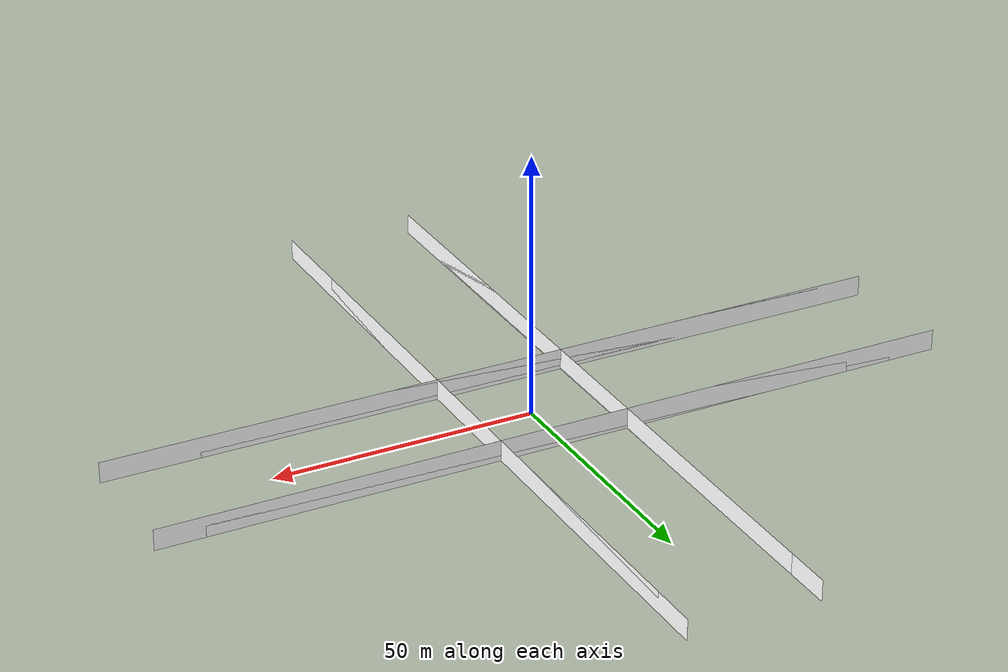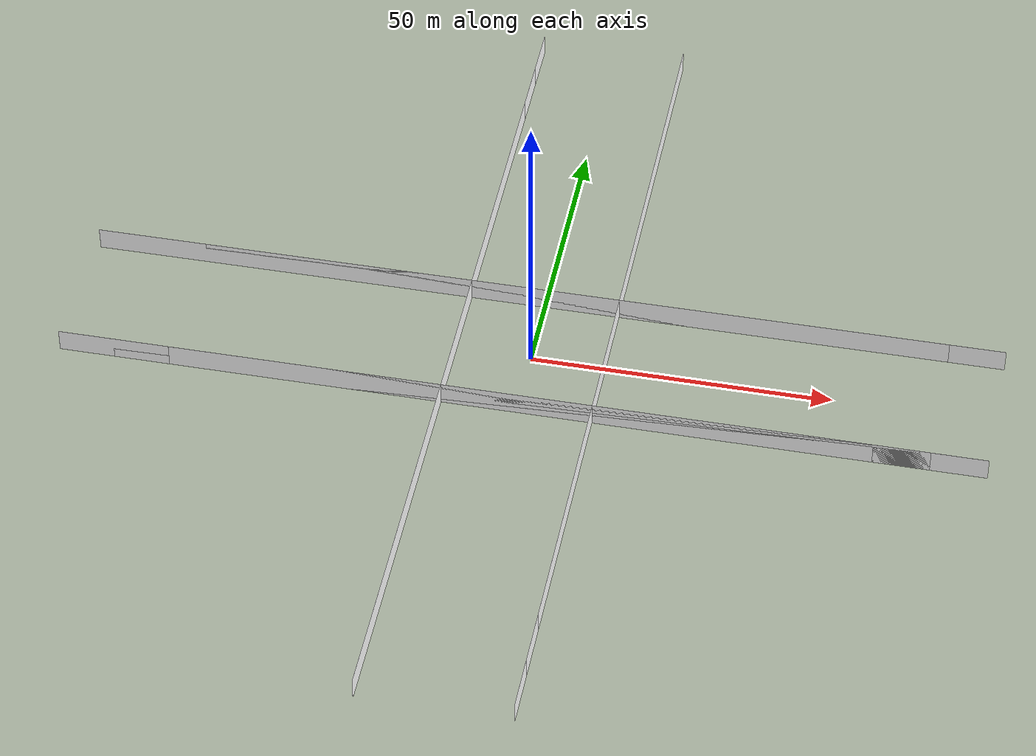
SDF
<sdf version="1.8">
 <world name="large_demo">
  <plugin name="ignition::gazebo::systems::Physics" filename="ignition-gazebo-physics-system"/>
  <plugin name="ignition::gazebo::systems::UserCommands" filename="ignition-gazebo-user-commands-system"/>
  <plugin name="ignition::gazebo::systems::SceneBroadcaster" filename="ignition-gazebo-scene-broadcaster-system"/>
  <plugin name="ignition::gazebo::systems::Contact" filename="ignition-gazebo-contact-system"/>
  <plugin filename="ignition-gazebo-sensors-system.so" name="ignition::gazebo::systems::Sensors"/>
  <light name="sun" type="directional">
   <cast_shadows>0</cast_shadows>
   <pose>0 0 100 0 -0 0</pose>
   <diffuse>0.8 0.8 0.8 1</diffuse>
   <specular>0.8 0.8 0.8 1</specular>
   <direction>-0.5 0.1 -0.9</direction>
   <intensity>5</intensity>
  </light>
  <gravity>0 0 -9.81</gravity>
  <magnetic_field>6e-06 2.3e-05 -4.2e-05</magnetic_field>
  <atmosphere type="adiabatic"/>
  <physics name="default_physics" type="ignored">
   <max_step_size>0.01</max_step_size>
   <real_time_factor>1</real_time_factor>
   <real_time_update_rate>100</real_time_update_rate>
  </physics>
  <scene>
   <ambient>1.0 1.0 1.0 1</ambient>
   <background>0.6 0.8 1.0 1</background>
   <shadows>0</shadows>
   <grid>0</grid>
  </scene>
  <spherical_coordinates>
   <latitude_deg>0.0</latitude_deg>
   <longitude_deg>0.0</longitude_deg>
   <elevation>10.0</elevation>
   <heading_deg>0</heading_deg>
   <surface_model>EARTH_WGS84</surface_model>
  </spherical_coordinates>
  <include>
   <uri>model://forest_wall</uri>
   <name>forest_wall1</name>
   <pose>12.5 0 2 1.570796 0 -1.570796</pose>
  </include>
  <include>
   <uri>model://forest_wall</uri>
   <name>forest_wall2</name>
   <pose>12.5 -9.32 2 1.570796 0 -1.570796</pose>
  </include>
  <include>
   <uri>model://forest_wall</uri>
   <name>forest_wall3</name>
   <pose>12.5 +9.32 2 1.570796 0 -1.570796</pose>
  </include>
  <include>
   <uri>model://forest_wall</uri>
   <name>forest_wall4</name>
   <pose>-12.5 0 2 1.570796 0 1.570796</pose>
  </include>
  <include>
   <uri>model://forest_wall</uri>
   <name>forest_wall5</name>
   <pose>-12.5 -9.32 2 1.570796 0 1.570796</pose>
  </include>
  <include>
   <uri>model://forest_wall</uri>
   <name>forest_wall6</name>
   <pose>-12.5 +9.32 2 1.570796 0 1.570796</pose>
  </include>
  <include><uri>model://forest_wall</uri><name>forest_wall7</name><pose>0 -12.5 2 1.570796 0 0</pose></include>
  <include>
   <uri>model://forest_wall</uri>
   <name>forest_wall8</name>
   <pose>-9.32 -12.5 2 1.570796 0 0</pose>
  </include>
  <include>
   <uri>model://forest_wall</uri>
   <name>forest_wall9</name>
   <pose>+9.32 -12.5 2 1.570796 0 0</pose>
  </include>
  <include><uri>model://forest_wall</uri><name>forest_wall10</name><pose>0 12.5 2 1.570796 0 0</pose></include>
  <include>
   <uri>model://forest_wall</uri>
   <name>forest_wall11</name>
   <pose>-9.32 12.5 2 1.570796 0 0</pose>
  </include>
  <include>
   <uri>model://forest_wall</uri>
   <name>forest_wall12</name>
   <pose>+9.32 12.5 2 1.570796 0 0</pose>
  </include>
 </world>
</sdf>

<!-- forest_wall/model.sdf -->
<sdf version="1.7">
<model name="forest_wall">
    <static>true</static>
    <link name="link">
        <collision name="collision">
            <geometry>
            <box>
                <normal>0 0 1</normal>
                <size>135 4 0.01</size>
            </box>
            </geometry>
        </collision>
        <visual name="visual">
            <cast_shadows>false</cast_shadows>
            <geometry>
            <plane>
                <normal>0 0 1</normal>
                <size>135 4</size>
            </plane>
            </geometry>
            <material>
                <diffuse>1.0 1.0 1.0 1</diffuse>
                <pbr>
                    <metal>
                    <albedo_map>
                        model://forest_wall/materials/textures/forest_wall_transparent.png
                    </albedo_map>
                    </metal>
                </pbr>
                <double_sided>true</double_sided>
            </material>
        </visual>
    </link>
</model>
</sdf>
